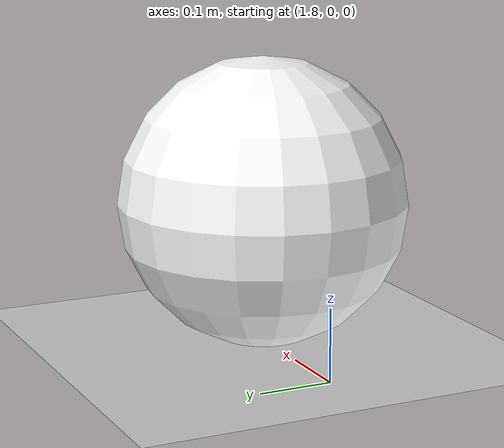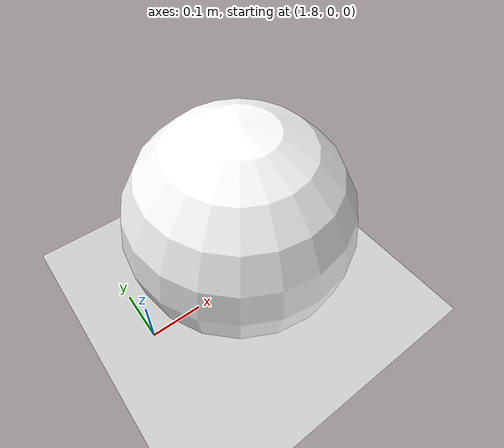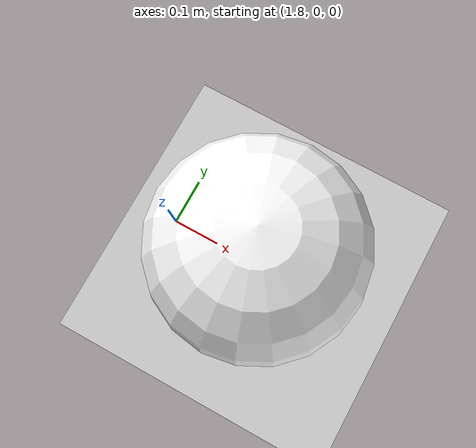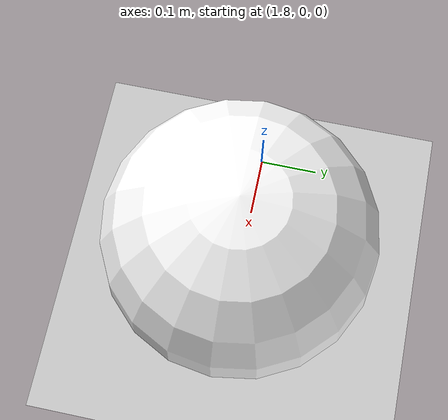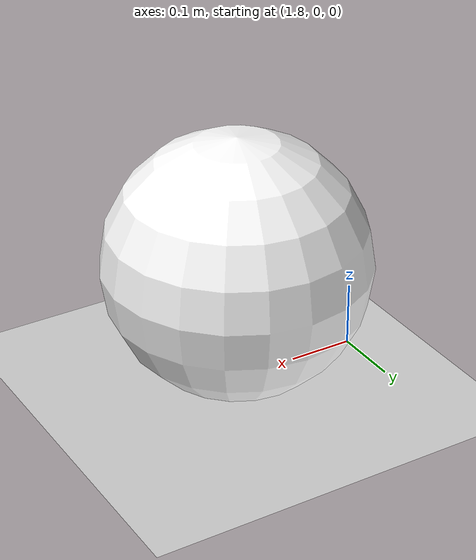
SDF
<?xml version="1.0"?>
<sdf version="1.8">
  <world name="ball_chaser_world">

    <!-- Physics -->
    <physics name="1ms" type="ignored">
      <max_step_size>0.001</max_step_size>
      <real_time_factor>1.0</real_time_factor>
    </physics>

    <!-- Plugins -->
    <plugin filename="gz-sim-physics-system" name="gz::sim::systems::Physics"/>
    <plugin filename="gz-sim-user-commands-system" name="gz::sim::systems::UserCommands"/>
    <plugin filename="gz-sim-scene-broadcaster-system" name="gz::sim::systems::SceneBroadcaster"/>
    <plugin filename="gz-sim-sensors-system" name="gz::sim::systems::Sensors">
      <render_engine>ogre2</render_engine>
    </plugin>

    <!-- Lighting -->
    <light type="directional" name="sun">
      <cast_shadows>true</cast_shadows>
      <pose>0 0 10 0 0 0</pose>
      <diffuse>0.8 0.8 0.8 1</diffuse>
      <specular>0.2 0.2 0.2 1</specular>
      <attenuation>
        <range>1000</range>
        <constant>0.9</constant>
        <linear>0.01</linear>
        <quadratic>0.001</quadratic>
      </attenuation>
      <direction>-0.5 0.1 -0.9</direction>
    </light>

    <!-- Ground Plane -->
    <model name="ground_plane">
      <static>true</static>
      <link name="link">
        <collision name="collision">
          <geometry>
            <plane>
              <normal>0 0 1</normal>
              <size>100 100</size>
            </plane>
          </geometry>
        </collision>
        <visual name="visual">
          <geometry>
            <plane>
              <normal>0 0 1</normal>
              <size>100 100</size>
            </plane>
          </geometry>
          <material>
            <ambient>0.8 0.8 0.8 1</ambient>
            <diffuse>0.8 0.8 0.8 1</diffuse>
            <specular>0.8 0.8 0.8 1</specular>
          </material>
        </visual>
      </link>
    </model>

    <!-- White Ball -->
    <model name="white_ball">
      <pose>2 0 0.2 0 0 0</pose>
      <link name="link">
        <collision name="collision">
          <geometry>
            <sphere>
              <radius>0.2</radius>
            </sphere>
          </geometry>
        </collision>
        <visual name="visual">
          <geometry>
            <sphere>
              <radius>0.2</radius>
            </sphere>
          </geometry>
          <material>
            <ambient>1 1 1 1</ambient>
            <diffuse>1 1 1 1</diffuse>
            <specular>1 1 1 1</specular>
          </material>
        </visual>
        <inertial>
          <mass>1.0</mass>
          <inertia>
            <ixx>0.016</ixx>
            <ixy>0</ixy>
            <ixz>0</ixz>
            <iyy>0.016</iyy>
            <iyz>0</iyz>
            <izz>0.016</izz>
          </inertia>
        </inertial>
      </link>
    </model>

  </world>
</sdf>
